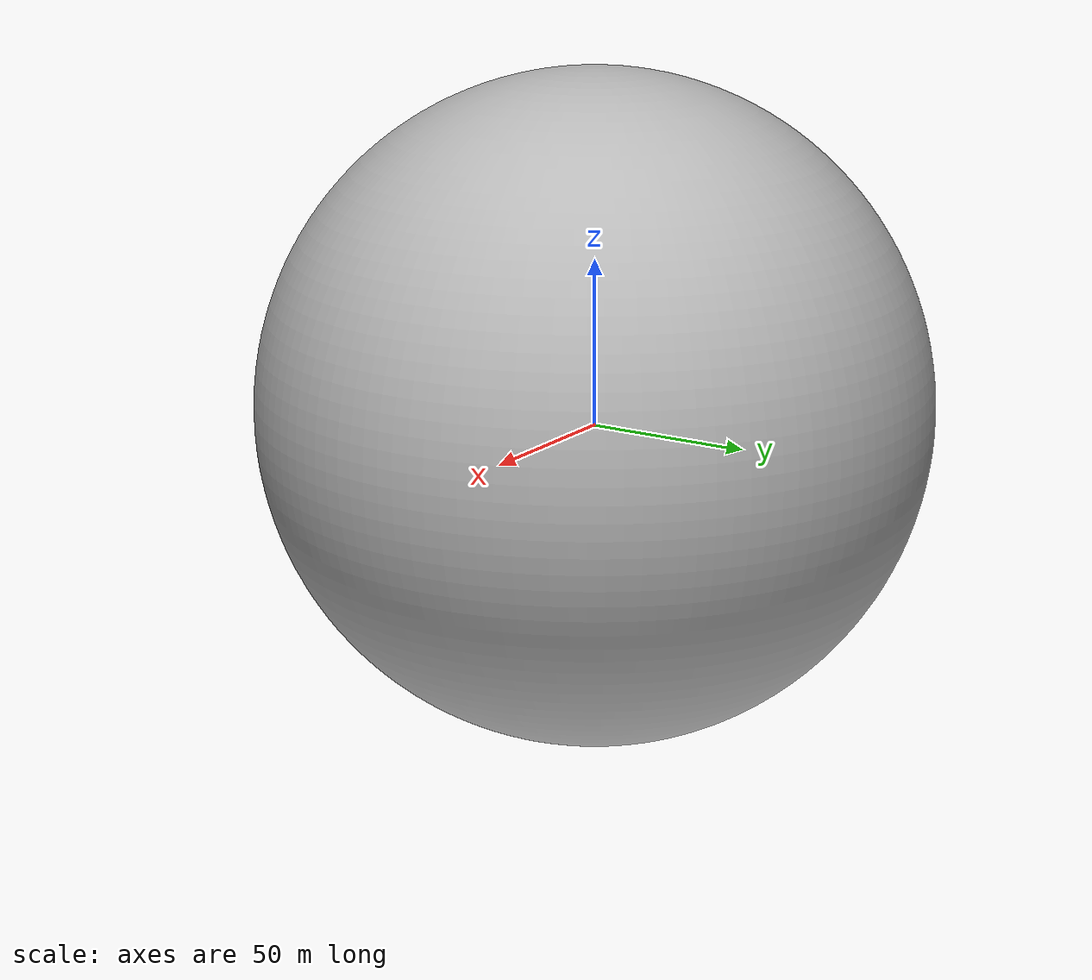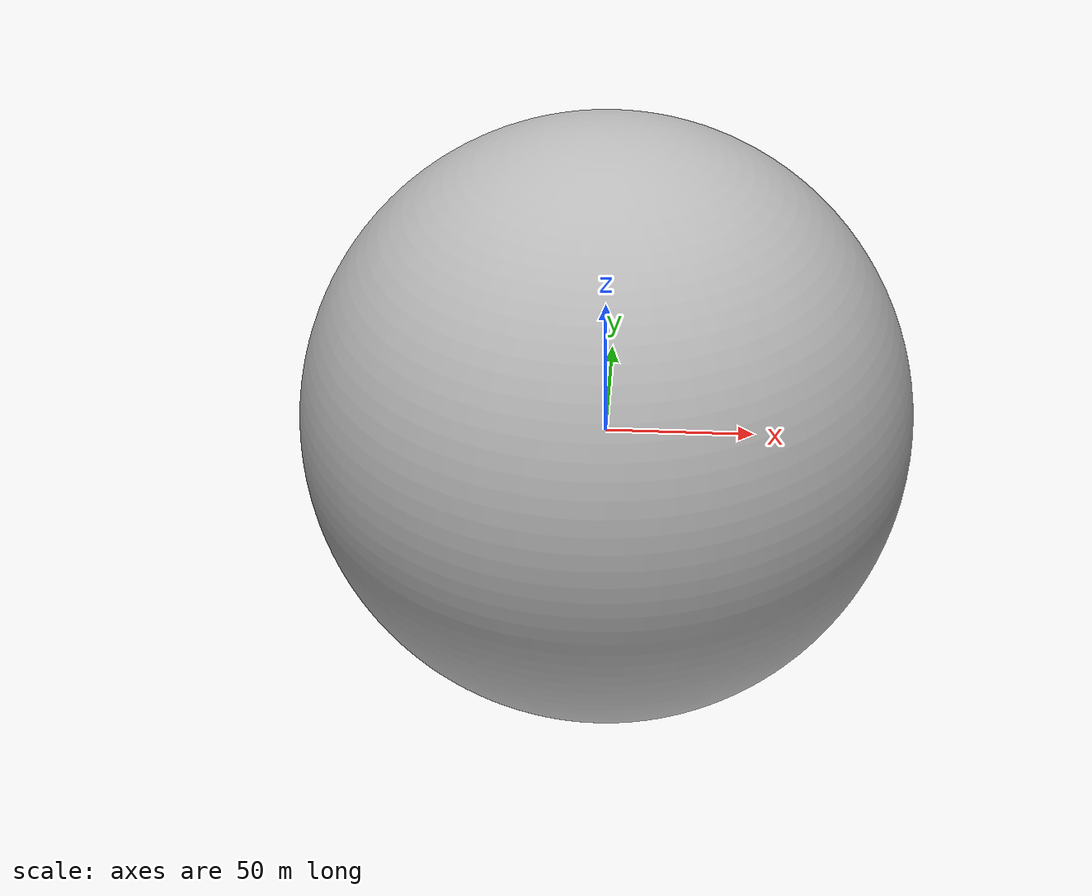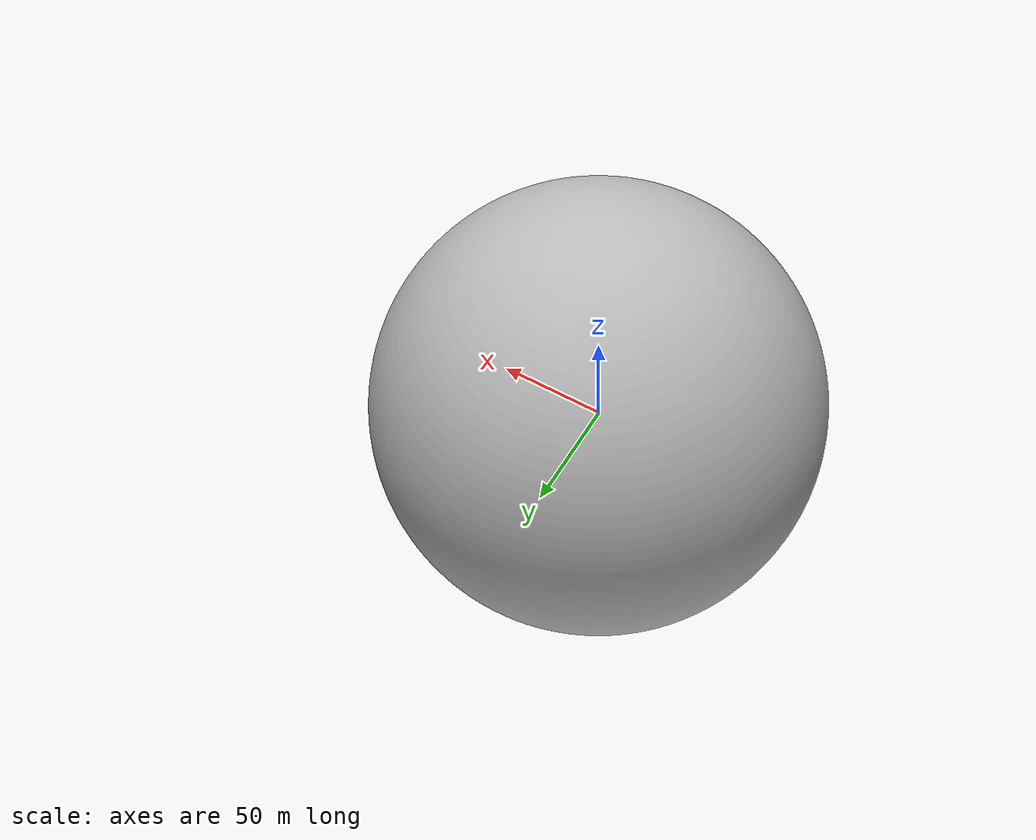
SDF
<sdf version="1.6">
  <world name="default">

    <light name="sun" type="directional">
      <pose frame="">7.485 -12.379 17.2198 0 -0 0</pose>
      <diffuse>0.7 0.7 0.7 1</diffuse>
      <specular>0.2 0.2 0.2 1</specular>
      <direction>-0.1698 0.1 -0.3</direction>
      <attenuation>
        <range>1000</range>
        <constant>0.9</constant>
        <linear>0.01</linear>
        <quadratic>0.001</quadratic>
      </attenuation>
      <cast_shadows>1</cast_shadows>
    </light>

    <model name='whiskeye_background'>
      <pose>0 0 6 0 0 0</pose>
      <static>true</static>
      <include>
        <uri>model://Background</uri>
      </include>
    </model>

    <model name='Banner'>
      <pose>0 0 0 0 0 0</pose>
      <static>true</static>
      <include>
        <uri>model://Banner</uri>
      </include>
    </model>

    <model name='Floor'>
      <pose>0 0 0 0 0 0</pose>
      <static>true</static>
      <include>
        <uri>model://Floor</uri>
      </include>
    </model>

    <model name='Walls'>
      <pose>0 0 0 0 0 0</pose>
      <static>true</static>
      <include>
        <uri>model://Walls</uri>
      </include>
    </model>

    <model name='CubesBR'>
      <pose>0 0 0 0 0 0</pose>
      <static>true</static>
      <include>
        <uri>model://CubesBR</uri>
      </include>
    </model>

    <model name='CubesTR'>
      <pose>0 0 0 0 0 0</pose>
      <static>true</static>
      <include>
        <uri>model://CubesTR</uri>
      </include>
    </model>

    <model name='CylindersTL'>
      <pose>0 0 0 0 0 0</pose>
      <static>true</static>
      <include>
        <uri>model://CylindersTL</uri>
      </include>
    </model>

    <model name='CylindersBL'>
      <pose>0 0 0 0 0 0</pose>
      <static>true</static>
      <include>
        <uri>model://CylindersBL</uri>
      </include>
    </model>

</world>
</sdf>

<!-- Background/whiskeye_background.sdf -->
<sdf version="1.5">
  <model name="whiskeye_background">
    <static>true</static>
    <link name="main">
      <visual name="visual">
        <pose>0 0 0 0 0 0</pose>
		<geometry>
			<mesh>
				<uri>model://Background/whiskeye_chinese_garden_background_sphere.dae</uri>
			</mesh>
		</geometry>
      </visual>
    </link>
  </model>
</sdf>

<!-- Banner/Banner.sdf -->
<sdf version="1.5">
  <model name="Banner">
    <static>true</static>
    <link name="main">
      <visual name="visual">
        <pose>0 0 0 0 0 0</pose>
		<geometry>
			<mesh>
				<uri>model://Banner/Banner.dae</uri>
			</mesh>
		</geometry>
      </visual>
    </link>
  </model>
</sdf>

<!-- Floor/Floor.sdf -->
<sdf version="1.5">
  <model name="Floor">
    <static>true</static>
    <link name="main">
      <visual name="visual">
        <pose>0 0 0 0 0 0</pose>
		<geometry>
			<mesh>
				<uri>model://Floor/Floor.dae</uri>
			</mesh>
		</geometry>
      </visual>
      <collision name="collision">
        <pose>0 0 0 0 0 0</pose>
		<geometry>
			<mesh>
				<uri>model://Floor/Floor.dae</uri>
			</mesh>
		</geometry>
        <surface>
          <friction>
            <ode>
              <mu>0.1</mu>
              <mu2>0.1</mu2>
            </ode>
          </friction>
        </surface>
      </collision>
    </link>
  </model>
</sdf>

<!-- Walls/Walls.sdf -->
<sdf version="1.5">
  <model name="Walls">
    <static>true</static>
    <link name="main">
      <visual name="visual">
        <pose>0 0 0 0 0 0</pose>
		<geometry>
			<mesh>
				<uri>model://Walls/Walls.dae</uri>
			</mesh>
		</geometry>
      </visual>
      <collision name="collision">
        <pose>0 0 0 0 0 0</pose>
		<geometry>
			<mesh>
				<uri>model://Walls/Walls.dae</uri>
			</mesh>
		</geometry>
        <surface>
          <friction>
            <ode>
              <mu>0.1</mu>
              <mu2>0.1</mu2>
            </ode>
          </friction>
        </surface>
      </collision>
    </link>
  </model>
</sdf>

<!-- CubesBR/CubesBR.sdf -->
<sdf version="1.5">
  <model name="CubesBR">
    <static>true</static>
    <link name="main">
      <visual name="visual">
        <pose>0 0 0 0 0 0</pose>
		<geometry>
			<mesh>
				<uri>model://CubesBR/CubesBR.dae</uri>
			</mesh>
		</geometry>
      </visual>
      <collision name="collision">
        <pose>0 0 0 0 0 0</pose>
		<geometry>
			<mesh>
				<uri>model://CubesBR/CubesBR.dae</uri>
			</mesh>
		</geometry>
        <surface>
          <friction>
            <ode>
              <mu>0.1</mu>
              <mu2>0.1</mu2>
            </ode>
          </friction>
        </surface>
      </collision>
    </link>
  </model>
</sdf>

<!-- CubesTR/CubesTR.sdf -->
<sdf version="1.5">
  <model name="CubesTR">
    <static>true</static>
    <link name="main">
      <visual name="visual">
        <pose>0 0 0 0 0 0</pose>
		<geometry>
			<mesh>
				<uri>model://CubesTR/CubesTR.dae</uri>
			</mesh>
		</geometry>
      </visual>
      <collision name="collision">
        <pose>0 0 0 0 0 0</pose>
		<geometry>
			<mesh>
				<uri>model://CubesTR/CubesTR.dae</uri>
			</mesh>
		</geometry>
        <surface>
          <friction>
            <ode>
              <mu>0.1</mu>
              <mu2>0.1</mu2>
            </ode>
          </friction>
        </surface>
      </collision>
    </link>
  </model>
</sdf>

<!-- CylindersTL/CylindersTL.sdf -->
<sdf version="1.5">
  <model name="CylindersTL">
    <static>true</static>
    <link name="main">
      <visual name="visual">
        <pose>0 0 0 0 0 0</pose>
		<geometry>
			<mesh>
				<uri>model://CylindersTL/CylindersTL.dae</uri>
			</mesh>
		</geometry>
      </visual>
      <collision name="collision">
        <pose>0 0 0 0 0 0</pose>
		<geometry>
			<mesh>
				<uri>model://CylindersTL/CylindersTL.dae</uri>
			</mesh>
		</geometry>
        <surface>
          <friction>
            <ode>
              <mu>0.1</mu>
              <mu2>0.1</mu2>
            </ode>
          </friction>
        </surface>
      </collision>
    </link>
  </model>
</sdf>

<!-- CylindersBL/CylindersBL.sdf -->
<sdf version="1.5">
  <model name="CylindersBL">
    <static>true</static>
    <link name="main">
      <visual name="visual">
        <pose>0 0 0 0 0 0</pose>
		<geometry>
			<mesh>
				<uri>model://CylindersBL/CylindersBL.dae</uri>
			</mesh>
		</geometry>
      </visual>
      <collision name="collision">
        <pose>0 0 0 0 0 0</pose>
		<geometry>
			<mesh>
				<uri>model://CylindersBL/CylindersBL.dae</uri>
			</mesh>
		</geometry>
        <surface>
          <friction>
            <ode>
              <mu>0.1</mu>
              <mu2>0.1</mu2>
            </ode>
          </friction>
        </surface>
      </collision>
    </link>
  </model>
</sdf>
